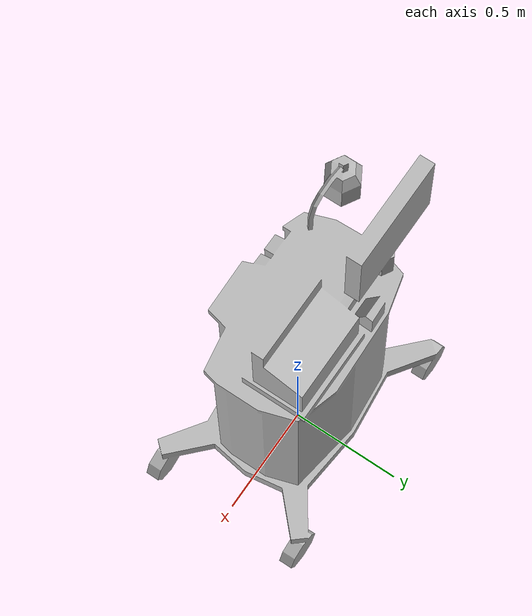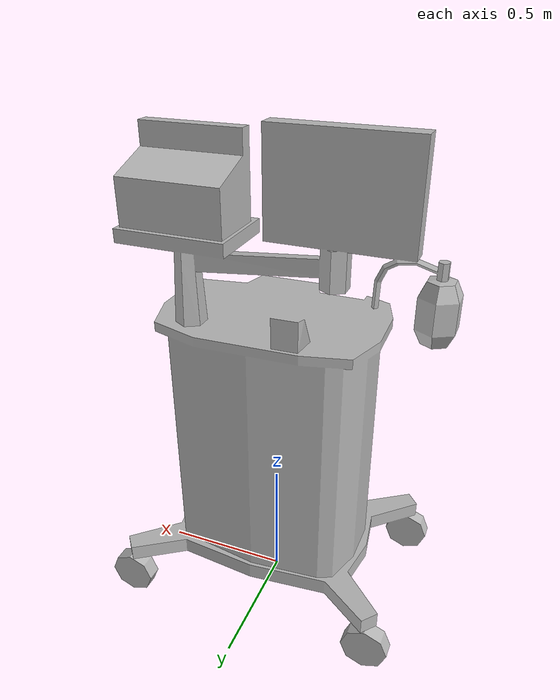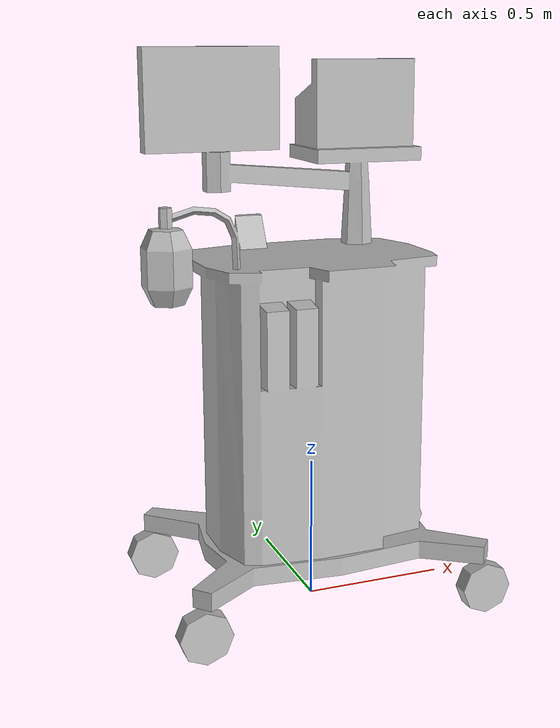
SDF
<?xml version='1.0' encoding='utf-8'?>
<sdf version="1.6">
  <model name="AnesthesiaMachine">
   <static>true</static>
    <link name="body">
      <pose>0 0 0 0 0 0</pose>

      <visual name="visual">
        <geometry>
          <mesh>
            <uri>model://AnesthesiaMachine/meshes/AnesthesiaMachine.obj</uri>
          </mesh>
        </geometry>
      </visual>

      <collision name="collision">
        <geometry>
          <mesh>
            <uri>model://AnesthesiaMachine/meshes/AnesthesiaMachine_Col.obj</uri>
          </mesh>
        </geometry>
      </collision>

    </link>
  </model>
</sdf>
